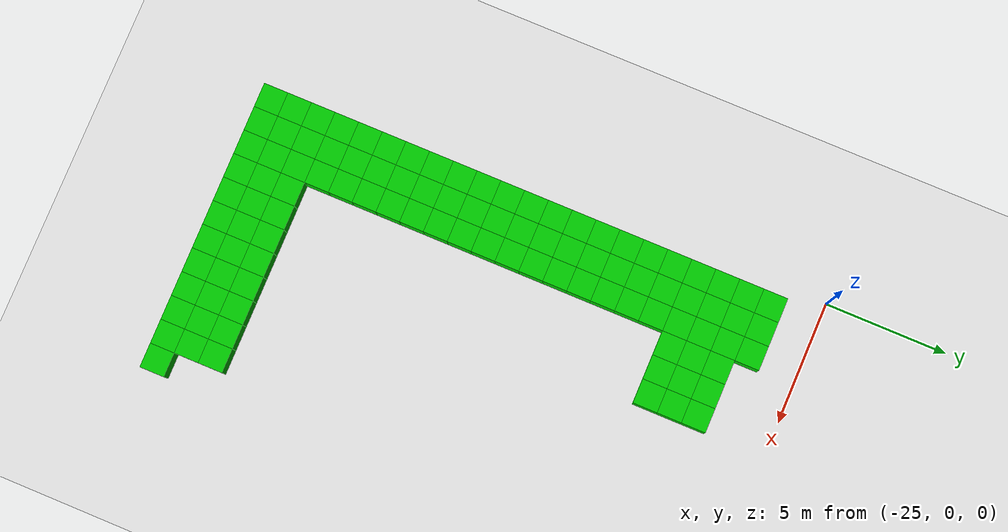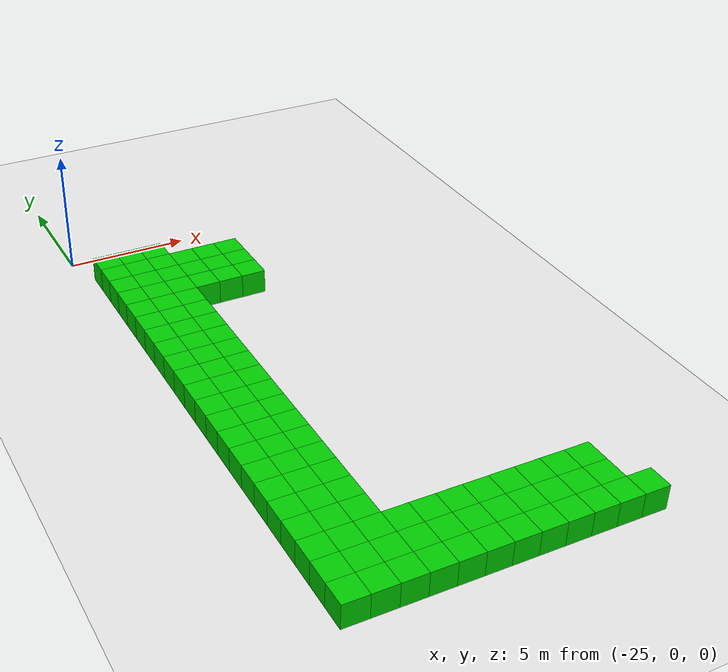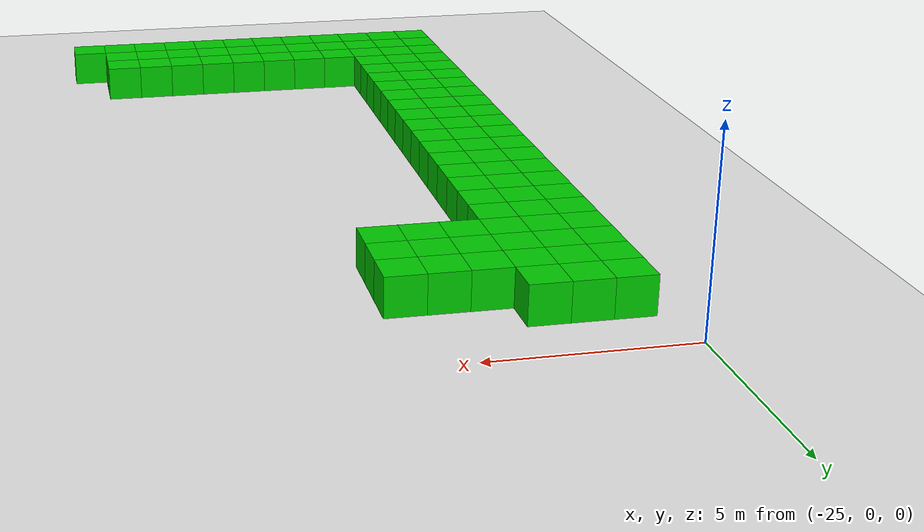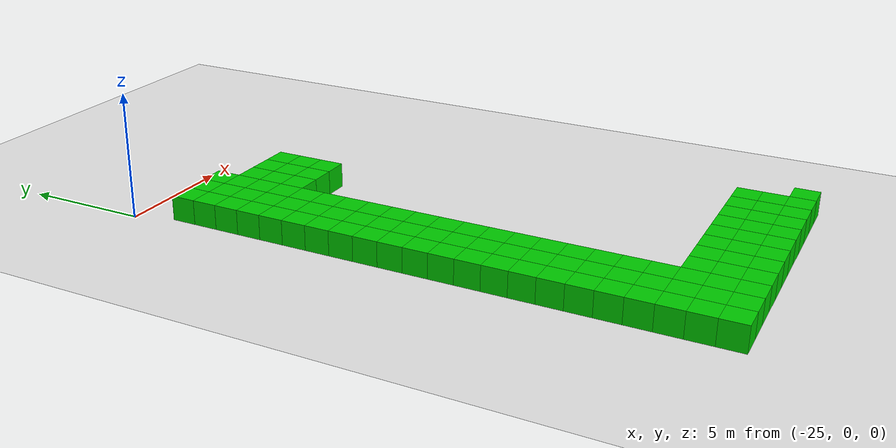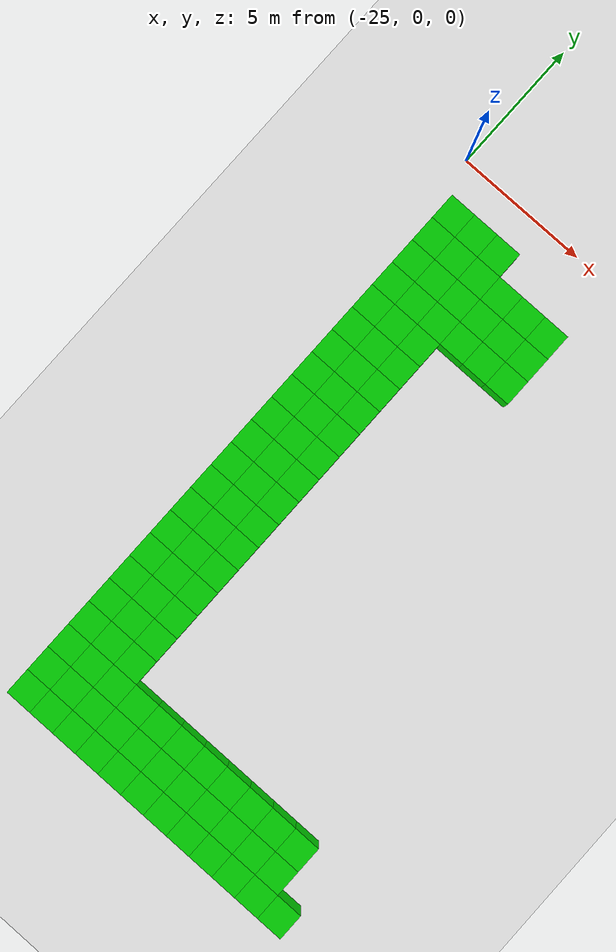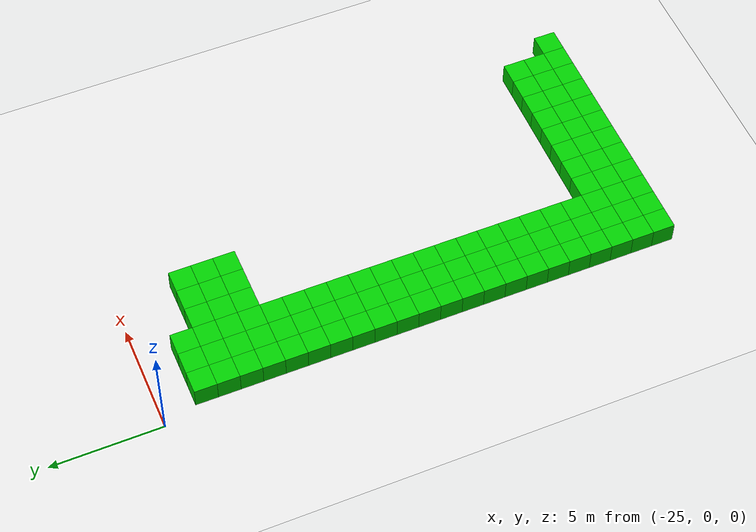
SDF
<sdf version="1.6">
 <world name="generated_maze">
  <model name="ground_plane">
   <static>true</static>
   <link name="link">
    <collision name="collision">
     <geometry><plane><normal>0 0 1</normal><size>100 100</size></plane></geometry>
    </collision>
    <visual name="visual">
     <geometry><plane><normal>0 0 1</normal><size>100 100</size></plane></geometry>
     <material>
      <ambient>0.9 0.9 0.9 1</ambient>
      <diffuse>0.9 0.9 0.9 1</diffuse>
      <specular>0.3 0.3 0.3 1</specular>
     </material>
    </visual>
   </link>
  </model>
  <model name="wall_26_0">
   <static>true</static>
   <pose>-24 -2 0.5 0 0 0</pose>
   <link name="link">
    <collision name="collision"><geometry><box><size>1 1 1</size></box></geometry></collision>
    <visual name="visual">
     <geometry><box><size>1 1 1</size></box></geometry>
     <material>
      <ambient>0.0 0.8 0.0 1</ambient>
      <diffuse>0.0 0.8 0.0 1</diffuse>
      <specular>0.1 0.1 0.1 1</specular>
     </material>
    </visual>
   </link>
  </model>
  <model name="wall_26_1">
   <static>true</static>
   <pose>-23 -2 0.5 0 0 0</pose>
   <link name="link">
    <collision name="collision"><geometry><box><size>1 1 1</size></box></geometry></collision>
    <visual name="visual">
     <geometry><box><size>1 1 1</size></box></geometry>
     <material>
      <ambient>0.0 0.8 0.0 1</ambient>
      <diffuse>0.0 0.8 0.0 1</diffuse>
      <specular>0.1 0.1 0.1 1</specular>
     </material>
    </visual>
   </link>
  </model>
  <model name="wall_26_2">
   <static>true</static>
   <pose>-22 -2 0.5 0 0 0</pose>
   <link name="link">
    <collision name="collision"><geometry><box><size>1 1 1</size></box></geometry></collision>
    <visual name="visual">
     <geometry><box><size>1 1 1</size></box></geometry>
     <material>
      <ambient>0.0 0.8 0.0 1</ambient>
      <diffuse>0.0 0.8 0.0 1</diffuse>
      <specular>0.1 0.1 0.1 1</specular>
     </material>
    </visual>
   </link>
  </model>
  <model name="wall_27_0">
   <static>true</static>
   <pose>-24 -3 0.5 0 0 0</pose>
   <link name="link">
    <collision name="collision"><geometry><box><size>1 1 1</size></box></geometry></collision>
    <visual name="visual">
     <geometry><box><size>1 1 1</size></box></geometry>
     <material>
      <ambient>0.0 0.8 0.0 1</ambient>
      <diffuse>0.0 0.8 0.0 1</diffuse>
      <specular>0.1 0.1 0.1 1</specular>
     </material>
    </visual>
   </link>
  </model>
  <model name="wall_27_1">
   <static>true</static>
   <pose>-23 -3 0.5 0 0 0</pose>
   <link name="link">
    <collision name="collision"><geometry><box><size>1 1 1</size></box></geometry></collision>
    <visual name="visual">
     <geometry><box><size>1 1 1</size></box></geometry>
     <material>
      <ambient>0.0 0.8 0.0 1</ambient>
      <diffuse>0.0 0.8 0.0 1</diffuse>
      <specular>0.1 0.1 0.1 1</specular>
     </material>
    </visual>
   </link>
  </model>
  <model name="wall_27_2">
   <static>true</static>
   <pose>-22 -3 0.5 0 0 0</pose>
   <link name="link">
    <collision name="collision"><geometry><box><size>1 1 1</size></box></geometry></collision>
    <visual name="visual">
     <geometry><box><size>1 1 1</size></box></geometry>
     <material>
      <ambient>0.0 0.8 0.0 1</ambient>
      <diffuse>0.0 0.8 0.0 1</diffuse>
      <specular>0.1 0.1 0.1 1</specular>
     </material>
    </visual>
   </link>
  </model>
  <model name="wall_27_3">
   <static>true</static>
   <pose>-21 -3 0.5 0 0 0</pose>
   <link name="link">
    <collision name="collision"><geometry><box><size>1 1 1</size></box></geometry></collision>
    <visual name="visual">
     <geometry><box><size>1 1 1</size></box></geometry>
     <material>
      <ambient>0.0 0.8 0.0 1</ambient>
      <diffuse>0.0 0.8 0.0 1</diffuse>
      <specular>0.1 0.1 0.1 1</specular>
     </material>
    </visual>
   </link>
  </model>
  <model name="wall_27_4">
   <static>true</static>
   <pose>-20 -3 0.5 0 0 0</pose>
   <link name="link">
    <collision name="collision"><geometry><box><size>1 1 1</size></box></geometry></collision>
    <visual name="visual">
     <geometry><box><size>1 1 1</size></box></geometry>
     <material>
      <ambient>0.0 0.8 0.0 1</ambient>
      <diffuse>0.0 0.8 0.0 1</diffuse>
      <specular>0.1 0.1 0.1 1</specular>
     </material>
    </visual>
   </link>
  </model>
  <model name="wall_27_5">
   <static>true</static>
   <pose>-19 -3 0.5 0 0 0</pose>
   <link name="link">
    <collision name="collision"><geometry><box><size>1 1 1</size></box></geometry></collision>
    <visual name="visual">
     <geometry><box><size>1 1 1</size></box></geometry>
     <material>
      <ambient>0.0 0.8 0.0 1</ambient>
      <diffuse>0.0 0.8 0.0 1</diffuse>
      <specular>0.1 0.1 0.1 1</specular>
     </material>
    </visual>
   </link>
  </model>
  <model name="wall_28_0">
   <static>true</static>
   <pose>-24 -4 0.5 0 0 0</pose>
   <link name="link">
    <collision name="collision"><geometry><box><size>1 1 1</size></box></geometry></collision>
    <visual name="visual">
     <geometry><box><size>1 1 1</size></box></geometry>
     <material>
      <ambient>0.0 0.8 0.0 1</ambient>
      <diffuse>0.0 0.8 0.0 1</diffuse>
      <specular>0.1 0.1 0.1 1</specular>
     </material>
    </visual>
   </link>
  </model>
  <model name="wall_28_1">
   <static>true</static>
   <pose>-23 -4 0.5 0 0 0</pose>
   <link name="link">
    <collision name="collision"><geometry><box><size>1 1 1</size></box></geometry></collision>
    <visual name="visual">
     <geometry><box><size>1 1 1</size></box></geometry>
     <material>
      <ambient>0.0 0.8 0.0 1</ambient>
      <diffuse>0.0 0.8 0.0 1</diffuse>
      <specular>0.1 0.1 0.1 1</specular>
     </material>
    </visual>
   </link>
  </model>
  <model name="wall_28_2">
   <static>true</static>
   <pose>-22 -4 0.5 0 0 0</pose>
   <link name="link">
    <collision name="collision"><geometry><box><size>1 1 1</size></box></geometry></collision>
    <visual name="visual">
     <geometry><box><size>1 1 1</size></box></geometry>
     <material>
      <ambient>0.0 0.8 0.0 1</ambient>
      <diffuse>0.0 0.8 0.0 1</diffuse>
      <specular>0.1 0.1 0.1 1</specular>
     </material>
    </visual>
   </link>
  </model>
  <model name="wall_28_3">
   <static>true</static>
   <pose>-21 -4 0.5 0 0 0</pose>
   <link name="link">
    <collision name="collision"><geometry><box><size>1 1 1</size></box></geometry></collision>
    <visual name="visual">
     <geometry><box><size>1 1 1</size></box></geometry>
     <material>
      <ambient>0.0 0.8 0.0 1</ambient>
      <diffuse>0.0 0.8 0.0 1</diffuse>
      <specular>0.1 0.1 0.1 1</specular>
     </material>
    </visual>
   </link>
  </model>
  <model name="wall_28_4">
   <static>true</static>
   <pose>-20 -4 0.5 0 0 0</pose>
   <link name="link">
    <collision name="collision"><geometry><box><size>1 1 1</size></box></geometry></collision>
    <visual name="visual">
     <geometry><box><size>1 1 1</size></box></geometry>
     <material>
      <ambient>0.0 0.8 0.0 1</ambient>
      <diffuse>0.0 0.8 0.0 1</diffuse>
      <specular>0.1 0.1 0.1 1</specular>
     </material>
    </visual>
   </link>
  </model>
  <model name="wall_28_5">
   <static>true</static>
   <pose>-19 -4 0.5 0 0 0</pose>
   <link name="link">
    <collision name="collision"><geometry><box><size>1 1 1</size></box></geometry></collision>
    <visual name="visual">
     <geometry><box><size>1 1 1</size></box></geometry>
     <material>
      <ambient>0.0 0.8 0.0 1</ambient>
      <diffuse>0.0 0.8 0.0 1</diffuse>
      <specular>0.1 0.1 0.1 1</specular>
     </material>
    </visual>
   </link>
  </model>
  <model name="wall_29_0">
   <static>true</static>
   <pose>-24 -5 0.5 0 0 0</pose>
   <link name="link">
    <collision name="collision"><geometry><box><size>1 1 1</size></box></geometry></collision>
    <visual name="visual">
     <geometry><box><size>1 1 1</size></box></geometry>
     <material>
      <ambient>0.0 0.8 0.0 1</ambient>
      <diffuse>0.0 0.8 0.0 1</diffuse>
      <specular>0.1 0.1 0.1 1</specular>
     </material>
    </visual>
   </link>
  </model>
  <model name="wall_29_1">
   <static>true</static>
   <pose>-23 -5 0.5 0 0 0</pose>
   <link name="link">
    <collision name="collision"><geometry><box><size>1 1 1</size></box></geometry></collision>
    <visual name="visual">
     <geometry><box><size>1 1 1</size></box></geometry>
     <material>
      <ambient>0.0 0.8 0.0 1</ambient>
      <diffuse>0.0 0.8 0.0 1</diffuse>
      <specular>0.1 0.1 0.1 1</specular>
     </material>
    </visual>
   </link>
  </model>
  <model name="wall_29_2">
   <static>true</static>
   <pose>-22 -5 0.5 0 0 0</pose>
   <link name="link">
    <collision name="collision"><geometry><box><size>1 1 1</size></box></geometry></collision>
    <visual name="visual">
     <geometry><box><size>1 1 1</size></box></geometry>
     <material>
      <ambient>0.0 0.8 0.0 1</ambient>
      <diffuse>0.0 0.8 0.0 1</diffuse>
      <specular>0.1 0.1 0.1 1</specular>
     </material>
    </visual>
   </link>
  </model>
  <model name="wall_29_3">
   <static>true</static>
   <pose>-21 -5 0.5 0 0 0</pose>
   <link name="link">
    <collision name="collision"><geometry><box><size>1 1 1</size></box></geometry></collision>
    <visual name="visual">
     <geometry><box><size>1 1 1</size></box></geometry>
     <material>
      <ambient>0.0 0.8 0.0 1</ambient>
      <diffuse>0.0 0.8 0.0 1</diffuse>
      <specular>0.1 0.1 0.1 1</specular>
     </material>
    </visual>
   </link>
  </model>
  <model name="wall_29_4">
   <static>true</static>
   <pose>-20 -5 0.5 0 0 0</pose>
   <link name="link">
    <collision name="collision"><geometry><box><size>1 1 1</size></box></geometry></collision>
    <visual name="visual">
     <geometry><box><size>1 1 1</size></box></geometry>
     <material>
      <ambient>0.0 0.8 0.0 1</ambient>
      <diffuse>0.0 0.8 0.0 1</diffuse>
      <specular>0.1 0.1 0.1 1</specular>
     </material>
    </visual>
   </link>
  </model>
  <model name="wall_29_5">
   <static>true</static>
   <pose>-19 -5 0.5 0 0 0</pose>
   <link name="link">
    <collision name="collision"><geometry><box><size>1 1 1</size></box></geometry></collision>
    <visual name="visual">
     <geometry><box><size>1 1 1</size></box></geometry>
     <material>
      <ambient>0.0 0.8 0.0 1</ambient>
      <diffuse>0.0 0.8 0.0 1</diffuse>
      <specular>0.1 0.1 0.1 1</specular>
     </material>
    </visual>
   </link>
  </model>
  <model name="wall_30_0">
   <static>true</static>
   <pose>-24 -6 0.5 0 0 0</pose>
   <link name="link">
    <collision name="collision"><geometry><box><size>1 1 1</size></box></geometry></collision>
    <visual name="visual">
     <geometry><box><size>1 1 1</size></box></geometry>
     <material>
      <ambient>0.0 0.8 0.0 1</ambient>
      <diffuse>0.0 0.8 0.0 1</diffuse>
      <specular>0.1 0.1 0.1 1</specular>
     </material>
    </visual>
   </link>
  </model>
  <model name="wall_30_1">
   <static>true</static>
   <pose>-23 -6 0.5 0 0 0</pose>
   <link name="link">
    <collision name="collision"><geometry><box><size>1 1 1</size></box></geometry></collision>
    <visual name="visual">
     <geometry><box><size>1 1 1</size></box></geometry>
     <material>
      <ambient>0.0 0.8 0.0 1</ambient>
      <diffuse>0.0 0.8 0.0 1</diffuse>
      <specular>0.1 0.1 0.1 1</specular>
     </material>
    </visual>
   </link>
  </model>
  <model name="wall_30_2">
   <static>true</static>
   <pose>-22 -6 0.5 0 0 0</pose>
   <link name="link">
    <collision name="collision"><geometry><box><size>1 1 1</size></box></geometry></collision>
    <visual name="visual">
     <geometry><box><size>1 1 1</size></box></geometry>
     <material>
      <ambient>0.0 0.8 0.0 1</ambient>
      <diffuse>0.0 0.8 0.0 1</diffuse>
      <specular>0.1 0.1 0.1 1</specular>
     </material>
    </visual>
   </link>
  </model>
  <model name="wall_31_0">
   <static>true</static>
   <pose>-24 -7 0.5 0 0 0</pose>
   <link name="link">
    <collision name="collision"><geometry><box><size>1 1 1</size></box></geometry></collision>
    <visual name="visual">
     <geometry><box><size>1 1 1</size></box></geometry>
     <material>
      <ambient>0.0 0.8 0.0 1</ambient>
      <diffuse>0.0 0.8 0.0 1</diffuse>
      <specular>0.1 0.1 0.1 1</specular>
     </material>
    </visual>
   </link>
  </model>
  <model name="wall_31_1">
   <static>true</static>
   <pose>-23 -7 0.5 0 0 0</pose>
   <link name="link">
    <collision name="collision"><geometry><box><size>1 1 1</size></box></geometry></collision>
    <visual name="visual">
     <geometry><box><size>1 1 1</size></box></geometry>
     <material>
      <ambient>0.0 0.8 0.0 1</ambient>
      <diffuse>0.0 0.8 0.0 1</diffuse>
      <specular>0.1 0.1 0.1 1</specular>
     </material>
    </visual>
   </link>
  </model>
  <model name="wall_31_2">
   <static>true</static>
   <pose>-22 -7 0.5 0 0 0</pose>
   <link name="link">
    <collision name="collision"><geometry><box><size>1 1 1</size></box></geometry></collision>
    <visual name="visual">
     <geometry><box><size>1 1 1</size></box></geometry>
     <material>
      <ambient>0.0 0.8 0.0 1</ambient>
      <diffuse>0.0 0.8 0.0 1</diffuse>
      <specular>0.1 0.1 0.1 1</specular>
     </material>
    </visual>
   </link>
  </model>
  <model name="wall_32_0">
   <static>true</static>
   <pose>-24 -8 0.5 0 0 0</pose>
   <link name="link">
    <collision name="collision"><geometry><box><size>1 1 1</size></box></geometry></collision>
    <visual name="visual">
     <geometry><box><size>1 1 1</size></box></geometry>
     <material>
      <ambient>0.0 0.8 0.0 1</ambient>
      <diffuse>0.0 0.8 0.0 1</diffuse>
      <specular>0.1 0.1 0.1 1</specular>
     </material>
    </visual>
   </link>
  </model>
  <model name="wall_32_1">
   <static>true</static>
   <pose>-23 -8 0.5 0 0 0</pose>
   <link name="link">
    <collision name="collision"><geometry><box><size>1 1 1</size></box></geometry></collision>
    <visual name="visual">
     <geometry><box><size>1 1 1</size></box></geometry>
     <material>
      <ambient>0.0 0.8 0.0 1</ambient>
      <diffuse>0.0 0.8 0.0 1</diffuse>
      <specular>0.1 0.1 0.1 1</specular>
     </material>
    </visual>
   </link>
  </model>
  <model name="wall_32_2">
   <static>true</static>
   <pose>-22 -8 0.5 0 0 0</pose>
   <link name="link">
    <collision name="collision"><geometry><box><size>1 1 1</size></box></geometry></collision>
    <visual name="visual">
     <geometry><box><size>1 1 1</size></box></geometry>
     <material>
      <ambient>0.0 0.8 0.0 1</ambient>
      <diffuse>0.0 0.8 0.0 1</diffuse>
      <specular>0.1 0.1 0.1 1</specular>
     </material>
    </visual>
   </link>
  </model>
  <model name="wall_33_0">
   <static>true</static>
   <pose>-24 -9 0.5 0 0 0</pose>
   <link name="link">
    <collision name="collision"><geometry><box><size>1 1 1</size></box></geometry></collision>
    <visual name="visual">
     <geometry><box><size>1 1 1</size></box></geometry>
     <material>
      <ambient>0.0 0.8 0.0 1</ambient>
      <diffuse>0.0 0.8 0.0 1</diffuse>
      <specular>0.1 0.1 0.1 1</specular>
     </material>
    </visual>
   </link>
  </model>
  <model name="wall_33_1">
   <static>true</static>
   <pose>-23 -9 0.5 0 0 0</pose>
   <link name="link">
    <collision name="collision"><geometry><box><size>1 1 1</size></box></geometry></collision>
    <visual name="visual">
     <geometry><box><size>1 1 1</size></box></geometry>
     <material>
      <ambient>0.0 0.8 0.0 1</ambient>
      <diffuse>0.0 0.8 0.0 1</diffuse>
      <specular>0.1 0.1 0.1 1</specular>
     </material>
    </visual>
   </link>
  </model>
  <model name="wall_33_2">
   <static>true</static>
   <pose>-22 -9 0.5 0 0 0</pose>
   <link name="link">
    <collision name="collision"><geometry><box><size>1 1 1</size></box></geometry></collision>
    <visual name="visual">
     <geometry><box><size>1 1 1</size></box></geometry>
     <material>
      <ambient>0.0 0.8 0.0 1</ambient>
      <diffuse>0.0 0.8 0.0 1</diffuse>
      <specular>0.1 0.1 0.1 1</specular>
     </material>
    </visual>
   </link>
  </model>
  <model name="wall_34_0">
   <static>true</static>
   <pose>-24 -10 0.5 0 0 0</pose>
   <link name="link">
    <collision name="collision"><geometry><box><size>1 1 1</size></box></geometry></collision>
    <visual name="visual">
     <geometry><box><size>1 1 1</size></box></geometry>
     <material>
      <ambient>0.0 0.8 0.0 1</ambient>
      <diffuse>0.0 0.8 0.0 1</diffuse>
      <specular>0.1 0.1 0.1 1</specular>
     </material>
    </visual>
   </link>
  </model>
  <model name="wall_34_1">
   <static>true</static>
   <pose>-23 -10 0.5 0 0 0</pose>
   <link name="link">
    <collision name="collision"><geometry><box><size>1 1 1</size></box></geometry></collision>
    <visual name="visual">
     <geometry><box><size>1 1 1</size></box></geometry>
     <material>
      <ambient>0.0 0.8 0.0 1</ambient>
      <diffuse>0.0 0.8 0.0 1</diffuse>
      <specular>0.1 0.1 0.1 1</specular>
     </material>
    </visual>
   </link>
  </model>
  <model name="wall_34_2">
   <static>true</static>
   <pose>-22 -10 0.5 0 0 0</pose>
   <link name="link">
    <collision name="collision"><geometry><box><size>1 1 1</size></box></geometry></collision>
    <visual name="visual">
     <geometry><box><size>1 1 1</size></box></geometry>
     <material>
      <ambient>0.0 0.8 0.0 1</ambient>
      <diffuse>0.0 0.8 0.0 1</diffuse>
      <specular>0.1 0.1 0.1 1</specular>
     </material>
    </visual>
   </link>
  </model>
  <model name="wall_35_0">
   <static>true</static>
   <pose>-24 -11 0.5 0 0 0</pose>
   <link name="link">
    <collision name="collision"><geometry><box><size>1 1 1</size></box></geometry></collision>
    <visual name="visual">
     <geometry><box><size>1 1 1</size></box></geometry>
     <material>
      <ambient>0.0 0.8 0.0 1</ambient>
      <diffuse>0.0 0.8 0.0 1</diffuse>
      <specular>0.1 0.1 0.1 1</specular>
     </material>
    </visual>
   </link>
  </model>
  <model name="wall_35_1">
   <static>true</static>
   <pose>-23 -11 0.5 0 0 0</pose>
   <link name="link">
    <collision name="collision"><geometry><box><size>1 1 1</size></box></geometry></collision>
    <visual name="visual">
     <geometry><box><size>1 1 1</size></box></geometry>
     <material>
      <ambient>0.0 0.8 0.0 1</ambient>
      <diffuse>0.0 0.8 0.0 1</diffuse>
      <specular>0.1 0.1 0.1 1</specular>
     </material>
    </visual>
   </link>
  </model>
  <model name="wall_35_2">
   <static>true</static>
   <pose>-22 -11 0.5 0 0 0</pose>
   <link name="link">
    <collision name="collision"><geometry><box><size>1 1 1</size></box></geometry></collision>
    <visual name="visual">
     <geometry><box><size>1 1 1</size></box></geometry>
     <material>
      <ambient>0.0 0.8 0.0 1</ambient>
      <diffuse>0.0 0.8 0.0 1</diffuse>
      <specular>0.1 0.1 0.1 1</specular>
     </material>
    </visual>
   </link>
  </model>
  <model name="wall_36_0">
   <static>true</static>
   <pose>-24 -12 0.5 0 0 0</pose>
   <link name="link">
    <collision name="collision"><geometry><box><size>1 1 1</size></box></geometry></collision>
    <visual name="visual">
     <geometry><box><size>1 1 1</size></box></geometry>
     <material>
      <ambient>0.0 0.8 0.0 1</ambient>
      <diffuse>0.0 0.8 0.0 1</diffuse>
      <specular>0.1 0.1 0.1 1</specular>
     </material>
    </visual>
   </link>
  </model>
  <model name="wall_36_1">
   <static>true</static>
   <pose>-23 -12 0.5 0 0 0</pose>
   <link name="link">
    <collision name="collision"><geometry><box><size>1 1 1</size></box></geometry></collision>
    <visual name="visual">
     <geometry><box><size>1 1 1</size></box></geometry>
     <material>
      <ambient>0.0 0.8 0.0 1</ambient>
      <diffuse>0.0 0.8 0.0 1</diffuse>
      <specular>0.1 0.1 0.1 1</specular>
     </material>
    </visual>
   </link>
  </model>
  <model name="wall_36_2">
   <static>true</static>
   <pose>-22 -12 0.5 0 0 0</pose>
   <link name="link">
    <collision name="collision"><geometry><box><size>1 1 1</size></box></geometry></collision>
    <visual name="visual">
     <geometry><box><size>1 1 1</size></box></geometry>
     <material>
      <ambient>0.0 0.8 0.0 1</ambient>
      <diffuse>0.0 0.8 0.0 1</diffuse>
      <specular>0.1 0.1 0.1 1</specular>
     </material>
    </visual>
   </link>
  </model>
  <model name="wall_37_0">
   <static>true</static>
   <pose>-24 -13 0.5 0 0 0</pose>
   <link name="link">
    <collision name="collision"><geometry><box><size>1 1 1</size></box></geometry></collision>
    <visual name="visual">
     <geometry><box><size>1 1 1</size></box></geometry>
     <material>
      <ambient>0.0 0.8 0.0 1</ambient>
      <diffuse>0.0 0.8 0.0 1</diffuse>
      <specular>0.1 0.1 0.1 1</specular>
     </material>
    </visual>
   </link>
  </model>
  <model name="wall_37_1">
   <static>true</static>
   <pose>-23 -13 0.5 0 0 0</pose>
   <link name="link">
    <collision name="collision"><geometry><box><size>1 1 1</size></box></geometry></collision>
    <visual name="visual">
     <geometry><box><size>1 1 1</size></box></geometry>
     <material>
      <ambient>0.0 0.8 0.0 1</ambient>
      <diffuse>0.0 0.8 0.0 1</diffuse>
      <specular>0.1 0.1 0.1 1</specular>
     </material>
    </visual>
   </link>
  </model>
  <model name="wall_37_2">
   <static>true</static>
   <pose>-22 -13 0.5 0 0 0</pose>
   <link name="link">
    <collision name="collision"><geometry><box><size>1 1 1</size></box></geometry></collision>
    <visual name="visual">
     <geometry><box><size>1 1 1</size></box></geometry>
     <material>
      <ambient>0.0 0.8 0.0 1</ambient>
      <diffuse>0.0 0.8 0.0 1</diffuse>
      <specular>0.1 0.1 0.1 1</specular>
     </material>
    </visual>
   </link>
  </model>
  <model name="wall_38_0">
   <static>true</static>
   <pose>-24 -14 0.5 0 0 0</pose>
   <link name="link">
    <collision name="collision"><geometry><box><size>1 1 1</size></box></geometry></collision>
    <visual name="visual">
     <geometry><box><size>1 1 1</size></box></geometry>
     <material>
      <ambient>0.0 0.8 0.0 1</ambient>
      <diffuse>0.0 0.8 0.0 1</diffuse>
      <specular>0.1 0.1 0.1 1</specular>
     </material>
    </visual>
   </link>
  </model>
  <model name="wall_38_1">
   <static>true</static>
   <pose>-23 -14 0.5 0 0 0</pose>
   <link name="link">
    <collision name="collision"><geometry><box><size>1 1 1</size></box></geometry></collision>
    <visual name="visual">
     <geometry><box><size>1 1 1</size></box></geometry>
     <material>
      <ambient>0.0 0.8 0.0 1</ambient>
      <diffuse>0.0 0.8 0.0 1</diffuse>
      <specular>0.1 0.1 0.1 1</specular>
     </material>
    </visual>
   </link>
  </model>
  <model name="wall_38_2">
   <static>true</static>
   <pose>-22 -14 0.5 0 0 0</pose>
   <link name="link">
    <collision name="collision"><geometry><box><size>1 1 1</size></box></geometry></collision>
    <visual name="visual">
     <geometry><box><size>1 1 1</size></box></geometry>
     <material>
      <ambient>0.0 0.8 0.0 1</ambient>
      <diffuse>0.0 0.8 0.0 1</diffuse>
      <specular>0.1 0.1 0.1 1</specular>
     </material>
    </visual>
   </link>
  </model>
  <model name="wall_39_0">
   <static>true</static>
   <pose>-24 -15 0.5 0 0 0</pose>
   <link name="link">
    <collision name="collision"><geometry><box><size>1 1 1</size></box></geometry></collision>
    <visual name="visual">
     <geometry><box><size>1 1 1</size></box></geometry>
     <material>
      <ambient>0.0 0.8 0.0 1</ambient>
      <diffuse>0.0 0.8 0.0 1</diffuse>
      <specular>0.1 0.1 0.1 1</specular>
     </material>
    </visual>
   </link>
  </model>
  <model name="wall_39_1">
   <static>true</static>
   <pose>-23 -15 0.5 0 0 0</pose>
   <link name="link">
    <collision name="collision"><geometry><box><size>1 1 1</size></box></geometry></collision>
    <visual name="visual">
     <geometry><box><size>1 1 1</size></box></geometry>
     <material>
      <ambient>0.0 0.8 0.0 1</ambient>
      <diffuse>0.0 0.8 0.0 1</diffuse>
      <specular>0.1 0.1 0.1 1</specular>
     </material>
    </visual>
   </link>
  </model>
  <model name="wall_39_2">
   <static>true</static>
   <pose>-22 -15 0.5 0 0 0</pose>
   <link name="link">
    <collision name="collision"><geometry><box><size>1 1 1</size></box></geometry></collision>
    <visual name="visual">
     <geometry><box><size>1 1 1</size></box></geometry>
     <material>
      <ambient>0.0 0.8 0.0 1</ambient>
      <diffuse>0.0 0.8 0.0 1</diffuse>
      <specular>0.1 0.1 0.1 1</specular>
     </material>
    </visual>
   </link>
  </model>
  <model name="wall_40_0">
   <static>true</static>
   <pose>-24 -16 0.5 0 0 0</pose>
   <link name="link">
    <collision name="collision"><geometry><box><size>1 1 1</size></box></geometry></collision>
    <visual name="visual">
     <geometry><box><size>1 1 1</size></box></geometry>
     <material>
      <ambient>0.0 0.8 0.0 1</ambient>
      <diffuse>0.0 0.8 0.0 1</diffuse>
      <specular>0.1 0.1 0.1 1</specular>
     </material>
    </visual>
   </link>
  </model>
  <model name="wall_40_1">
   <static>true</static>
   <pose>-23 -16 0.5 0 0 0</pose>
   <link name="link">
    <collision name="collision"><geometry><box><size>1 1 1</size></box></geometry></collision>
    <visual name="visual">
     <geometry><box><size>1 1 1</size></box></geometry>
     <material>
      <ambient>0.0 0.8 0.0 1</ambient>
      <diffuse>0.0 0.8 0.0 1</diffuse>
      <specular>0.1 0.1 0.1 1</specular>
     </material>
    </visual>
   </link>
  </model>
  <model name="wall_40_2">
   <static>true</static>
   <pose>-22 -16 0.5 0 0 0</pose>
   <link name="link">
    <collision name="collision"><geometry><box><size>1 1 1</size></box></geometry></collision>
    <visual name="visual">
     <geometry><box><size>1 1 1</size></box></geometry>
     <material>
      <ambient>0.0 0.8 0.0 1</ambient>
      <diffuse>0.0 0.8 0.0 1</diffuse>
      <specular>0.1 0.1 0.1 1</specular>
     </material>
    </visual>
   </link>
  </model>
  <model name="wall_41_0">
   <static>true</static>
   <pose>-24 -17 0.5 0 0 0</pose>
   <link name="link">
    <collision name="collision"><geometry><box><size>1 1 1</size></box></geometry></collision>
    <visual name="visual">
     <geometry><box><size>1 1 1</size></box></geometry>
     <material>
      <ambient>0.0 0.8 0.0 1</ambient>
      <diffuse>0.0 0.8 0.0 1</diffuse>
      <specular>0.1 0.1 0.1 1</specular>
     </material>
    </visual>
   </link>
  </model>
  <model name="wall_41_1">
   <static>true</static>
   <pose>-23 -17 0.5 0 0 0</pose>
   <link name="link">
    <collision name="collision"><geometry><box><size>1 1 1</size></box></geometry></collision>
    <visual name="visual">
     <geometry><box><size>1 1 1</size></box></geometry>
     <material>
      <ambient>0.0 0.8 0.0 1</ambient>
      <diffuse>0.0 0.8 0.0 1</diffuse>
      <specular>0.1 0.1 0.1 1</specular>
     </material>
    </visual>
   </link>
  </model>
  <model name="wall_41_2">
   <static>true</static>
   <pose>-22 -17 0.5 0 0 0</pose>
   <link name="link">
    <collision name="collision"><geometry><box><size>1 1 1</size></box></geometry></collision>
    <visual name="visual">
     <geometry><box><size>1 1 1</size></box></geometry>
     <material>
      <ambient>0.0 0.8 0.0 1</ambient>
      <diffuse>0.0 0.8 0.0 1</diffuse>
      <specular>0.1 0.1 0.1 1</specular>
     </material>
    </visual>
   </link>
  </model>
  <model name="wall_42_0">
   <static>true</static>
   <pose>-24 -18 0.5 0 0 0</pose>
   <link name="link">
    <collision name="collision"><geometry><box><size>1 1 1</size></box></geometry></collision>
    <visual name="visual">
     <geometry><box><size>1 1 1</size></box></geometry>
     <material>
      <ambient>0.0 0.8 0.0 1</ambient>
      <diffuse>0.0 0.8 0.0 1</diffuse>
      <specular>0.1 0.1 0.1 1</specular>
     </material>
    </visual>
   </link>
  </model>
  <model name="wall_42_1">
   <static>true</static>
   <pose>-23 -18 0.5 0 0 0</pose>
   <link name="link">
    <collision name="collision"><geometry><box><size>1 1 1</size></box></geometry></collision>
    <visual name="visual">
     <geometry><box><size>1 1 1</size></box></geometry>
     <material>
      <ambient>0.0 0.8 0.0 1</ambient>
      <diffuse>0.0 0.8 0.0 1</diffuse>
      <specular>0.1 0.1 0.1 1</specular>
     </material>
    </visual>
   </link>
  </model>
  <model name="wall_42_2">
   <static>true</static>
   <pose>-22 -18 0.5 0 0 0</pose>
   <link name="link">
    <collision name="collision"><geometry><box><size>1 1 1</size></box></geometry></collision>
    <visual name="visual">
     <geometry><box><size>1 1 1</size></box></geometry>
     <material>
      <ambient>0.0 0.8 0.0 1</ambient>
      <diffuse>0.0 0.8 0.0 1</diffuse>
      <specular>0.1 0.1 0.1 1</specular>
     </material>
    </visual>
   </link>
  </model>
  <model name="wall_43_0">
   <static>true</static>
   <pose>-24 -19 0.5 0 0 0</pose>
   <link name="link">
    <collision name="collision"><geometry><box><size>1 1 1</size></box></geometry></collision>
    <visual name="visual">
     <geometry><box><size>1 1 1</size></box></geometry>
     <material>
      <ambient>0.0 0.8 0.0 1</ambient>
      <diffuse>0.0 0.8 0.0 1</diffuse>
      <specular>0.1 0.1 0.1 1</specular>
     </material>
    </visual>
   </link>
  </model>
  <model name="wall_43_1">
   <static>true</static>
   <pose>-23 -19 0.5 0 0 0</pose>
   <link name="link">
    <collision name="collision"><geometry><box><size>1 1 1</size></box></geometry></collision>
    <visual name="visual">
     <geometry><box><size>1 1 1</size></box></geometry>
     <material>
      <ambient>0.0 0.8 0.0 1</ambient>
      <diffuse>0.0 0.8 0.0 1</diffuse>
      <specular>0.1 0.1 0.1 1</specular>
     </material>
    </visual>
   </link>
  </model>
  <model name="wall_43_2">
   <static>true</static>
   <pose>-22 -19 0.5 0 0 0</pose>
   <link name="link">
    <collision name="collision"><geometry><box><size>1 1 1</size></box></geometry></collision>
    <visual name="visual">
     <geometry><box><size>1 1 1</size></box></geometry>
     <material>
      <ambient>0.0 0.8 0.0 1</ambient>
      <diffuse>0.0 0.8 0.0 1</diffuse>
      <specular>0.1 0.1 0.1 1</specular>
     </material>
    </visual>
   </link>
  </model>
  <model name="wall_44_0">
   <static>true</static>
   <pose>-24 -20 0.5 0 0 0</pose>
   <link name="link">
    <collision name="collision"><geometry><box><size>1 1 1</size></box></geometry></collision>
    <visual name="visual">
     <geometry><box><size>1 1 1</size></box></geometry>
     <material>
      <ambient>0.0 0.8 0.0 1</ambient>
      <diffuse>0.0 0.8 0.0 1</diffuse>
      <specular>0.1 0.1 0.1 1</specular>
     </material>
    </visual>
   </link>
  </model>
  <model name="wall_44_1">
   <static>true</static>
   <pose>-23 -20 0.5 0 0 0</pose>
   <link name="link">
    <collision name="collision"><geometry><box><size>1 1 1</size></box></geometry></collision>
    <visual name="visual">
     <geometry><box><size>1 1 1</size></box></geometry>
     <material>
      <ambient>0.0 0.8 0.0 1</ambient>
      <diffuse>0.0 0.8 0.0 1</diffuse>
      <specular>0.1 0.1 0.1 1</specular>
     </material>
    </visual>
   </link>
  </model>
  <model name="wall_44_2">
   <static>true</static>
   <pose>-22 -20 0.5 0 0 0</pose>
   <link name="link">
    <collision name="collision"><geometry><box><size>1 1 1</size></box></geometry></collision>
    <visual name="visual">
     <geometry><box><size>1 1 1</size></box></geometry>
     <material>
      <ambient>0.0 0.8 0.0 1</ambient>
      <diffuse>0.0 0.8 0.0 1</diffuse>
      <specular>0.1 0.1 0.1 1</specular>
     </material>
    </visual>
   </link>
  </model>
  <model name="wall_45_0">
   <static>true</static>
   <pose>-24 -21 0.5 0 0 0</pose>
   <link name="link">
    <collision name="collision"><geometry><box><size>1 1 1</size></box></geometry></collision>
    <visual name="visual">
     <geometry><box><size>1 1 1</size></box></geometry>
     <material>
      <ambient>0.0 0.8 0.0 1</ambient>
      <diffuse>0.0 0.8 0.0 1</diffuse>
      <specular>0.1 0.1 0.1 1</specular>
     </material>
    </visual>
   </link>
  </model>
  <model name="wall_45_1">
   <static>true</static>
   <pose>-23 -21 0.5 0 0 0</pose>
   <link name="link">
    <collision name="collision"><geometry><box><size>1 1 1</size></box></geometry></collision>
    <visual name="visual">
     <geometry><box><size>1 1 1</size></box></geometry>
     <material>
      <ambient>0.0 0.8 0.0 1</ambient>
      <diffuse>0.0 0.8 0.0 1</diffuse>
      <specular>0.1 0.1 0.1 1</specular>
     </material>
    </visual>
   </link>
  </model>
  <model name="wall_45_2">
   <static>true</static>
   <pose>-22 -21 0.5 0 0 0</pose>
   <link name="link">
    <collision name="collision"><geometry><box><size>1 1 1</size></box></geometry></collision>
    <visual name="visual">
     <geometry><box><size>1 1 1</size></box></geometry>
     <material>
      <ambient>0.0 0.8 0.0 1</ambient>
      <diffuse>0.0 0.8 0.0 1</diffuse>
      <specular>0.1 0.1 0.1 1</specular>
     </material>
    </visual>
   </link>
  </model>
  <model name="wall_45_3">
   <static>true</static>
   <pose>-21 -21 0.5 0 0 0</pose>
   <link name="link">
    <collision name="collision"><geometry><box><size>1 1 1</size></box></geometry></collision>
    <visual name="visual">
     <geometry><box><size>1 1 1</size></box></geometry>
     <material>
      <ambient>0.0 0.8 0.0 1</ambient>
      <diffuse>0.0 0.8 0.0 1</diffuse>
      <specular>0.1 0.1 0.1 1</specular>
     </material>
    </visual>
   </link>
  </model>
  <model name="wall_45_4">
   <static>true</static>
   <pose>-20 -21 0.5 0 0 0</pose>
   <link name="link">
    <collision name="collision"><geometry><box><size>1 1 1</size></box></geometry></collision>
    <visual name="visual">
     <geometry><box><size>1 1 1</size></box></geometry>
     <material>
      <ambient>0.0 0.8 0.0 1</ambient>
      <diffuse>0.0 0.8 0.0 1</diffuse>
      <specular>0.1 0.1 0.1 1</specular>
     </material>
    </visual>
   </link>
  </model>
  <model name="wall_45_5">
   <static>true</static>
   <pose>-19 -21 0.5 0 0 0</pose>
   <link name="link">
    <collision name="collision"><geometry><box><size>1 1 1</size></box></geometry></collision>
    <visual name="visual">
     <geometry><box><size>1 1 1</size></box></geometry>
     <material>
      <ambient>0.0 0.8 0.0 1</ambient>
      <diffuse>0.0 0.8 0.0 1</diffuse>
      <specular>0.1 0.1 0.1 1</specular>
     </material>
    </visual>
   </link>
  </model>
  <model name="wall_45_6">
   <static>true</static>
   <pose>-18 -21 0.5 0 0 0</pose>
   <link name="link">
    <collision name="collision"><geometry><box><size>1 1 1</size></box></geometry></collision>
    <visual name="visual">
     <geometry><box><size>1 1 1</size></box></geometry>
     <material>
      <ambient>0.0 0.8 0.0 1</ambient>
      <diffuse>0.0 0.8 0.0 1</diffuse>
      <specular>0.1 0.1 0.1 1</specular>
     </material>
    </visual>
   </link>
  </model>
  <model name="wall_45_7">
   <static>true</static>
   <pose>-17 -21 0.5 0 0 0</pose>
   <link name="link">
    <collision name="collision"><geometry><box><size>1 1 1</size></box></geometry></collision>
    <visual name="visual">
     <geometry><box><size>1 1 1</size></box></geometry>
     <material>
      <ambient>0.0 0.8 0.0 1</ambient>
      <diffuse>0.0 0.8 0.0 1</diffuse>
      <specular>0.1 0.1 0.1 1</specular>
     </material>
    </visual>
   </link>
  </model>
  <model name="wall_45_8">
   <static>true</static>
   <pose>-16 -21 0.5 0 0 0</pose>
   <link name="link">
    <collision name="collision"><geometry><box><size>1 1 1</size></box></geometry></collision>
    <visual name="visual">
     <geometry><box><size>1 1 1</size></box></geometry>
     <material>
      <ambient>0.0 0.8 0.0 1</ambient>
      <diffuse>0.0 0.8 0.0 1</diffuse>
      <specular>0.1 0.1 0.1 1</specular>
     </material>
    </visual>
   </link>
  </model>
  <model name="wall_45_9">
   <static>true</static>
   <pose>-15 -21 0.5 0 0 0</pose>
   <link name="link">
    <collision name="collision"><geometry><box><size>1 1 1</size></box></geometry></collision>
    <visual name="visual">
     <geometry><box><size>1 1 1</size></box></geometry>
     <material>
      <ambient>0.0 0.8 0.0 1</ambient>
      <diffuse>0.0 0.8 0.0 1</diffuse>
      <specular>0.1 0.1 0.1 1</specular>
     </material>
    </visual>
   </link>
  </model>
  <model name="wall_45_10">
   <static>true</static>
   <pose>-14 -21 0.5 0 0 0</pose>
   <link name="link">
    <collision name="collision"><geometry><box><size>1 1 1</size></box></geometry></collision>
    <visual name="visual">
     <geometry><box><size>1 1 1</size></box></geometry>
     <material>
      <ambient>0.0 0.8 0.0 1</ambient>
      <diffuse>0.0 0.8 0.0 1</diffuse>
      <specular>0.1 0.1 0.1 1</specular>
     </material>
    </visual>
   </link>
  </model>
  <model name="wall_46_0">
   <static>true</static>
   <pose>-24 -22 0.5 0 0 0</pose>
   <link name="link">
    <collision name="collision"><geometry><box><size>1 1 1</size></box></geometry></collision>
    <visual name="visual">
     <geometry><box><size>1 1 1</size></box></geometry>
     <material>
      <ambient>0.0 0.8 0.0 1</ambient>
      <diffuse>0.0 0.8 0.0 1</diffuse>
      <specular>0.1 0.1 0.1 1</specular>
     </material>
    </visual>
   </link>
  </model>
  <model name="wall_46_1">
   <static>true</static>
   <pose>-23 -22 0.5 0 0 0</pose>
   <link name="link">
    <collision name="collision"><geometry><box><size>1 1 1</size></box></geometry></collision>
    <visual name="visual">
     <geometry><box><size>1 1 1</size></box></geometry>
     <material>
      <ambient>0.0 0.8 0.0 1</ambient>
      <diffuse>0.0 0.8 0.0 1</diffuse>
      <specular>0.1 0.1 0.1 1</specular>
     </material>
    </visual>
   </link>
  </model>
  <model name="wall_46_2">
   <static>true</static>
   <pose>-22 -22 0.5 0 0 0</pose>
   <link name="link">
    <collision name="collision"><geometry><box><size>1 1 1</size></box></geometry></collision>
    <visual name="visual">
     <geometry><box><size>1 1 1</size></box></geometry>
     <material>
      <ambient>0.0 0.8 0.0 1</ambient>
      <diffuse>0.0 0.8 0.0 1</diffuse>
      <specular>0.1 0.1 0.1 1</specular>
     </material>
    </visual>
   </link>
  </model>
  <model name="wall_46_3">
   <static>true</static>
   <pose>-21 -22 0.5 0 0 0</pose>
   <link name="link">
    <collision name="collision"><geometry><box><size>1 1 1</size></box></geometry></collision>
    <visual name="visual">
     <geometry><box><size>1 1 1</size></box></geometry>
     <material>
      <ambient>0.0 0.8 0.0 1</ambient>
      <diffuse>0.0 0.8 0.0 1</diffuse>
      <specular>0.1 0.1 0.1 1</specular>
     </material>
    </visual>
   </link>
  </model>
  <model name="wall_46_4">
   <static>true</static>
   <pose>-20 -22 0.5 0 0 0</pose>
   <link name="link">
    <collision name="collision"><geometry><box><size>1 1 1</size></box></geometry></collision>
    <visual name="visual">
     <geometry><box><size>1 1 1</size></box></geometry>
     <material>
      <ambient>0.0 0.8 0.0 1</ambient>
      <diffuse>0.0 0.8 0.0 1</diffuse>
      <specular>0.1 0.1 0.1 1</specular>
     </material>
    </visual>
   </link>
  </model>
  <model name="wall_46_5">
   <static>true</static>
   <pose>-19 -22 0.5 0 0 0</pose>
   <link name="link">
    <collision name="collision"><geometry><box><size>1 1 1</size></box></geometry></collision>
    <visual name="visual">
     <geometry><box><size>1 1 1</size></box></geometry>
     <material>
      <ambient>0.0 0.8 0.0 1</ambient>
      <diffuse>0.0 0.8 0.0 1</diffuse>
      <specular>0.1 0.1 0.1 1</specular>
     </material>
    </visual>
   </link>
  </model>
  <model name="wall_46_6">
   <static>true</static>
   <pose>-18 -22 0.5 0 0 0</pose>
   <link name="link">
    <collision name="collision"><geometry><box><size>1 1 1</size></box></geometry></collision>
    <visual name="visual">
     <geometry><box><size>1 1 1</size></box></geometry>
     <material>
      <ambient>0.0 0.8 0.0 1</ambient>
      <diffuse>0.0 0.8 0.0 1</diffuse>
      <specular>0.1 0.1 0.1 1</specular>
     </material>
    </visual>
   </link>
  </model>
  <model name="wall_46_7">
   <static>true</static>
   <pose>-17 -22 0.5 0 0 0</pose>
   <link name="link">
    <collision name="collision"><geometry><box><size>1 1 1</size></box></geometry></collision>
    <visual name="visual">
     <geometry><box><size>1 1 1</size></box></geometry>
     <material>
      <ambient>0.0 0.8 0.0 1</ambient>
      <diffuse>0.0 0.8 0.0 1</diffuse>
      <specular>0.1 0.1 0.1 1</specular>
     </material>
    </visual>
   </link>
  </model>
  <model name="wall_46_8">
   <static>true</static>
   <pose>-16 -22 0.5 0 0 0</pose>
   <link name="link">
    <collision name="collision"><geometry><box><size>1 1 1</size></box></geometry></collision>
    <visual name="visual">
     <geometry><box><size>1 1 1</size></box></geometry>
     <material>
      <ambient>0.0 0.8 0.0 1</ambient>
      <diffuse>0.0 0.8 0.0 1</diffuse>
      <specular>0.1 0.1 0.1 1</specular>
     </material>
    </visual>
   </link>
  </model>
  <model name="wall_46_9">
   <static>true</static>
   <pose>-15 -22 0.5 0 0 0</pose>
   <link name="link">
    <collision name="collision"><geometry><box><size>1 1 1</size></box></geometry></collision>
    <visual name="visual">
     <geometry><box><size>1 1 1</size></box></geometry>
     <material>
      <ambient>0.0 0.8 0.0 1</ambient>
      <diffuse>0.0 0.8 0.0 1</diffuse>
      <specular>0.1 0.1 0.1 1</specular>
     </material>
    </visual>
   </link>
  </model>
  <model name="wall_46_10">
   <static>true</static>
   <pose>-14 -22 0.5 0 0 0</pose>
   <link name="link">
    <collision name="collision"><geometry><box><size>1 1 1</size></box></geometry></collision>
    <visual name="visual">
     <geometry><box><size>1 1 1</size></box></geometry>
     <material>
      <ambient>0.0 0.8 0.0 1</ambient>
      <diffuse>0.0 0.8 0.0 1</diffuse>
      <specular>0.1 0.1 0.1 1</specular>
     </material>
    </visual>
   </link>
  </model>
  <model name="wall_47_0">
   <static>true</static>
   <pose>-24 -23 0.5 0 0 0</pose>
   <link name="link">
    <collision name="collision"><geometry><box><size>1 1 1</size></box></geometry></collision>
    <visual name="visual">
     <geometry><box><size>1 1 1</size></box></geometry>
     <material>
      <ambient>0.0 0.8 0.0 1</ambient>
      <diffuse>0.0 0.8 0.0 1</diffuse>
      <specular>0.1 0.1 0.1 1</specular>
     </material>
    </visual>
   </link>
  </model>
  <model name="wall_47_1">
   <static>true</static>
   <pose>-23 -23 0.5 0 0 0</pose>
   <link name="link">
    <collision name="collision"><geometry><box><size>1 1 1</size></box></geometry></collision>
    <visual name="visual">
     <geometry><box><size>1 1 1</size></box></geometry>
     <material>
      <ambient>0.0 0.8 0.0 1</ambient>
      <diffuse>0.0 0.8 0.0 1</diffuse>
      <specular>0.1 0.1 0.1 1</specular>
     </material>
    </visual>
   </link>
  </model>
  <model name="wall_47_2">
   <static>true</static>
   <pose>-22 -23 0.5 0 0 0</pose>
   <link name="link">
    <collision name="collision"><geometry><box><size>1 1 1</size></box></geometry></collision>
    <visual name="visual">
     <geometry><box><size>1 1 1</size></box></geometry>
     <material>
      <ambient>0.0 0.8 0.0 1</ambient>
      <diffuse>0.0 0.8 0.0 1</diffuse>
      <specular>0.1 0.1 0.1 1</specular>
     </material>
    </visual>
   </link>
  </model>
  <model name="wall_47_3">
   <static>true</static>
   <pose>-21 -23 0.5 0 0 0</pose>
   <link name="link">
    <collision name="collision"><geometry><box><size>1 1 1</size></box></geometry></collision>
    <visual name="visual">
     <geometry><box><size>1 1 1</size></box></geometry>
     <material>
      <ambient>0.0 0.8 0.0 1</ambient>
      <diffuse>0.0 0.8 0.0 1</diffuse>
      <specular>0.1 0.1 0.1 1</specular>
     </material>
    </visual>
   </link>
  </model>
  <model name="wall_47_4">
   <static>true</static>
   <pose>-20 -23 0.5 0 0 0</pose>
   <link name="link">
    <collision name="collision"><geometry><box><size>1 1 1</size></box></geometry></collision>
    <visual name="visual">
     <geometry><box><size>1 1 1</size></box></geometry>
     <material>
      <ambient>0.0 0.8 0.0 1</ambient>
      <diffuse>0.0 0.8 0.0 1</diffuse>
      <specular>0.1 0.1 0.1 1</specular>
     </material>
    </visual>
   </link>
  </model>
  <model name="wall_47_5">
   <static>true</static>
   <pose>-19 -23 0.5 0 0 0</pose>
   <link name="link">
    <collision name="collision"><geometry><box><size>1 1 1</size></box></geometry></collision>
    <visual name="visual">
     <geometry><box><size>1 1 1</size></box></geometry>
     <material>
      <ambient>0.0 0.8 0.0 1</ambient>
      <diffuse>0.0 0.8 0.0 1</diffuse>
      <specular>0.1 0.1 0.1 1</specular>
     </material>
    </visual>
   </link>
  </model>
  <model name="wall_47_6">
   <static>true</static>
   <pose>-18 -23 0.5 0 0 0</pose>
   <link name="link">
    <collision name="collision"><geometry><box><size>1 1 1</size></box></geometry></collision>
    <visual name="visual">
     <geometry><box><size>1 1 1</size></box></geometry>
     <material>
      <ambient>0.0 0.8 0.0 1</ambient>
      <diffuse>0.0 0.8 0.0 1</diffuse>
      <specular>0.1 0.1 0.1 1</specular>
     </material>
    </visual>
   </link>
  </model>
  <model name="wall_47_7">
   <static>true</static>
   <pose>-17 -23 0.5 0 0 0</pose>
   <link name="link">
    <collision name="collision"><geometry><box><size>1 1 1</size></box></geometry></collision>
    <visual name="visual">
     <geometry><box><size>1 1 1</size></box></geometry>
     <material>
      <ambient>0.0 0.8 0.0 1</ambient>
      <diffuse>0.0 0.8 0.0 1</diffuse>
      <specular>0.1 0.1 0.1 1</specular>
     </material>
    </visual>
   </link>
  </model>
  <model name="wall_47_8">
   <static>true</static>
   <pose>-16 -23 0.5 0 0 0</pose>
   <link name="link">
    <collision name="collision"><geometry><box><size>1 1 1</size></box></geometry></collision>
    <visual name="visual">
     <geometry><box><size>1 1 1</size></box></geometry>
     <material>
      <ambient>0.0 0.8 0.0 1</ambient>
      <diffuse>0.0 0.8 0.0 1</diffuse>
      <specular>0.1 0.1 0.1 1</specular>
     </material>
    </visual>
   </link>
  </model>
  <model name="wall_47_9">
   <static>true</static>
   <pose>-15 -23 0.5 0 0 0</pose>
   <link name="link">
    <collision name="collision"><geometry><box><size>1 1 1</size></box></geometry></collision>
    <visual name="visual">
     <geometry><box><size>1 1 1</size></box></geometry>
     <material>
      <ambient>0.0 0.8 0.0 1</ambient>
      <diffuse>0.0 0.8 0.0 1</diffuse>
      <specular>0.1 0.1 0.1 1</specular>
     </material>
    </visual>
   </link>
  </model>
  <model name="wall_47_10">
   <static>true</static>
   <pose>-14 -23 0.5 0 0 0</pose>
   <link name="link">
    <collision name="collision"><geometry><box><size>1 1 1</size></box></geometry></collision>
    <visual name="visual">
     <geometry><box><size>1 1 1</size></box></geometry>
     <material>
      <ambient>0.0 0.8 0.0 1</ambient>
      <diffuse>0.0 0.8 0.0 1</diffuse>
      <specular>0.1 0.1 0.1 1</specular>
     </material>
    </visual>
   </link>
  </model>
  <model name="wall_47_11">
   <static>true</static>
   <pose>-13 -23 0.5 0 0 0</pose>
   <link name="link">
    <collision name="collision"><geometry><box><size>1 1 1</size></box></geometry></collision>
    <visual name="visual">
     <geometry><box><size>1 1 1</size></box></geometry>
     <material>
      <ambient>0.0 0.8 0.0 1</ambient>
      <diffuse>0.0 0.8 0.0 1</diffuse>
      <specular>0.1 0.1 0.1 1</specular>
     </material>
    </visual>
   </link>
  </model>
 </world>
</sdf>
